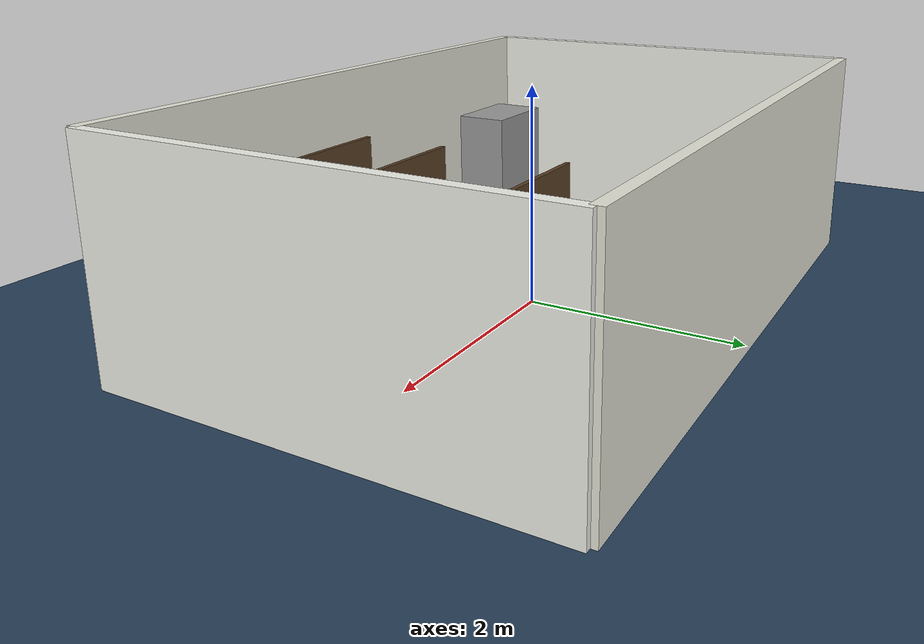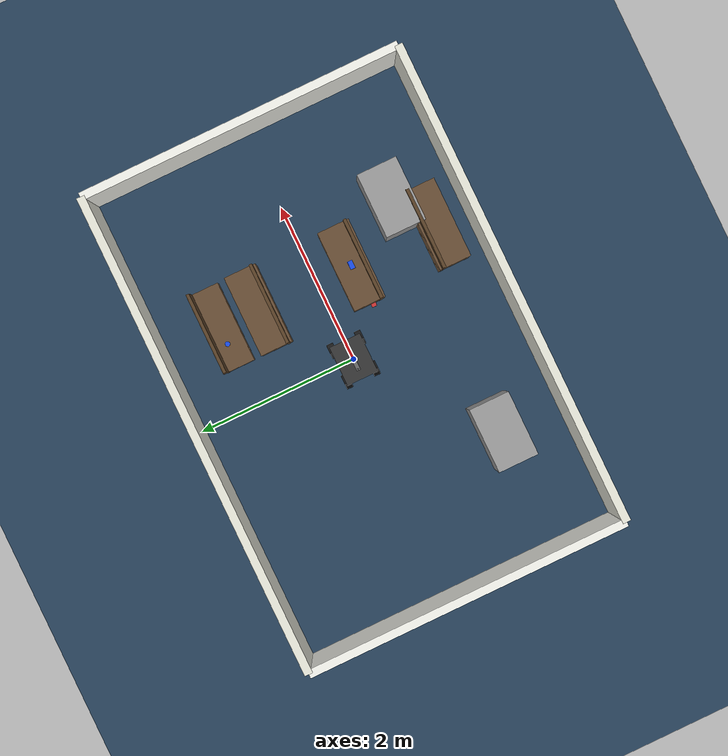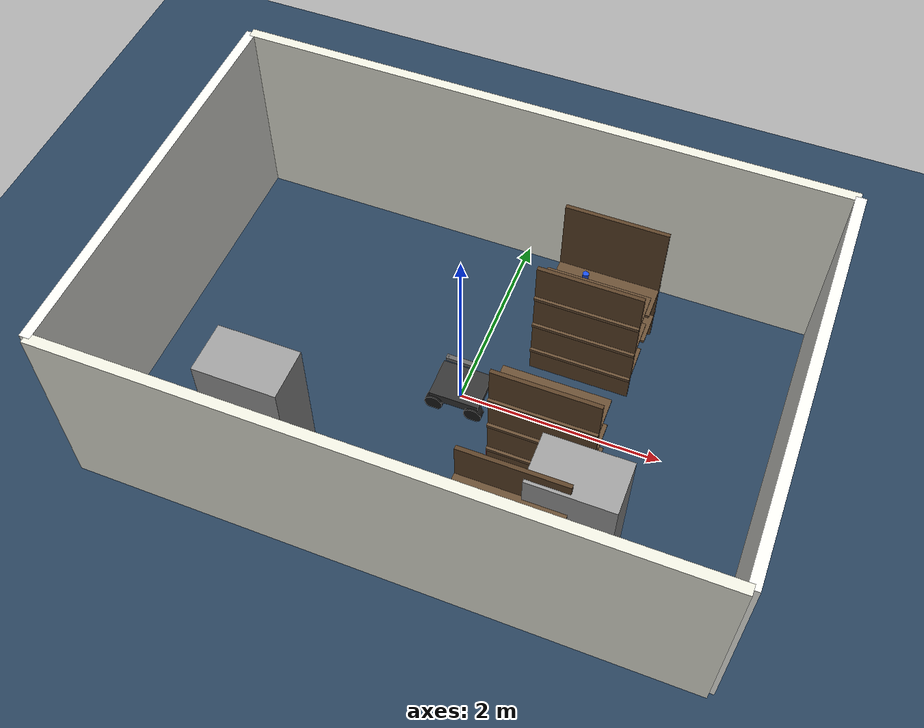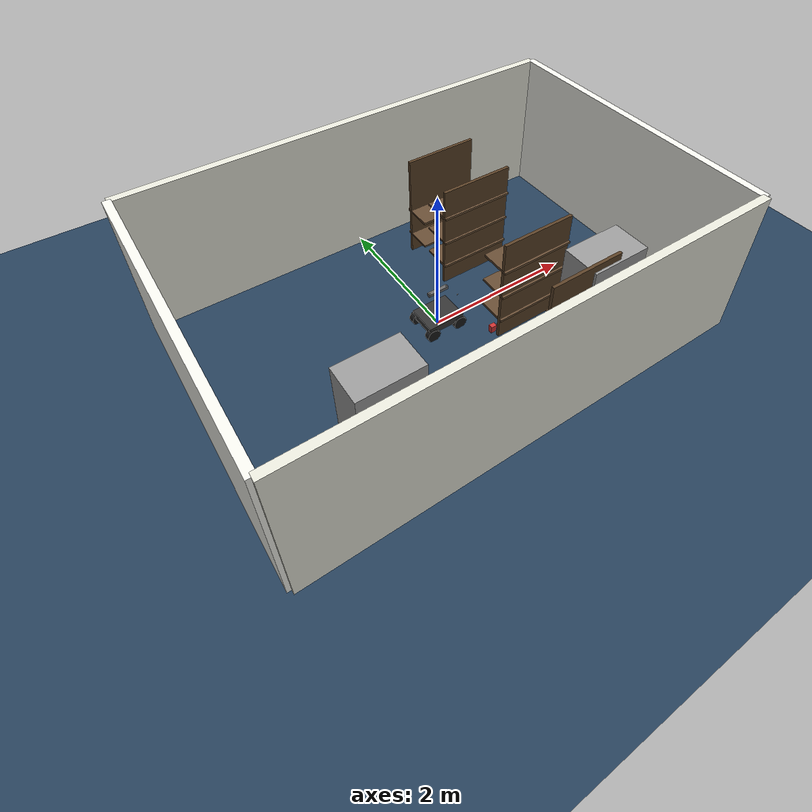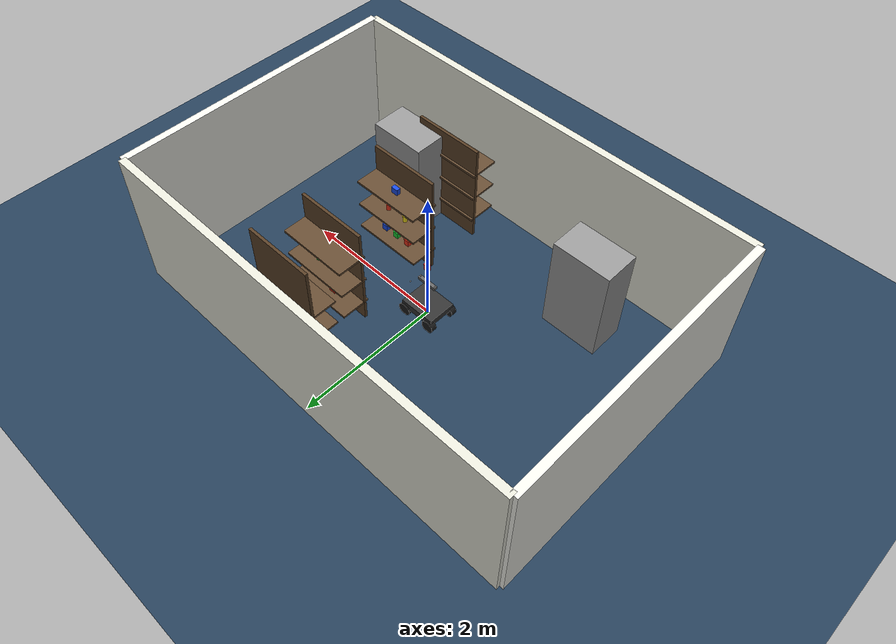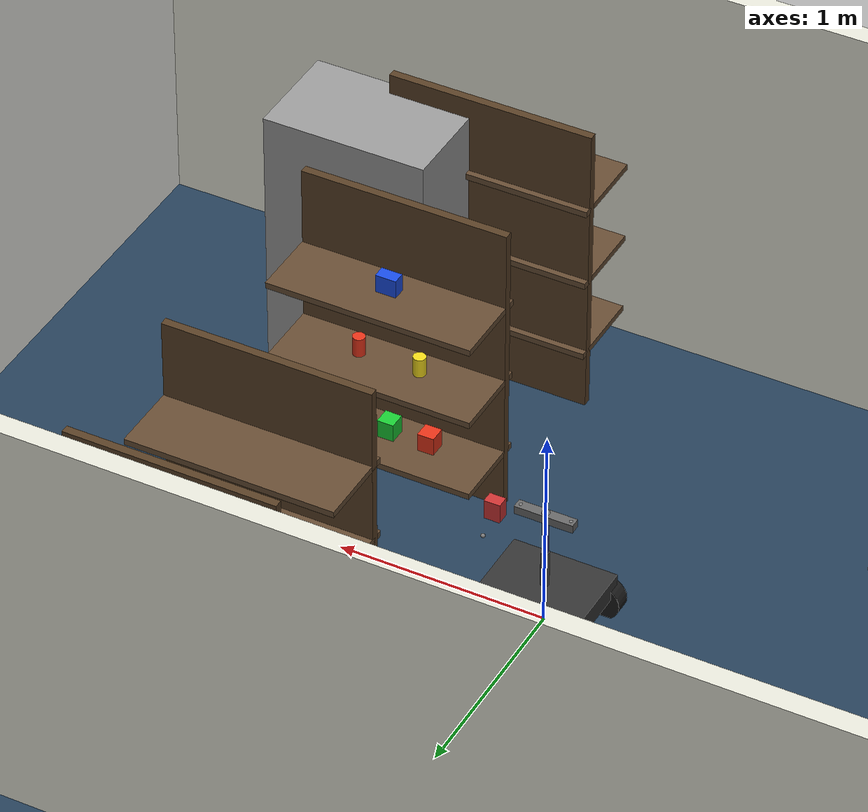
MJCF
<mujoco model="honi_store">
  <include file="honi_scene_v2.1.xml"/>

  <option timestep="0.002" gravity="0 0 -9.81"/>

  <visual>
    <headlight ambient="0.3 0.3 0.3" diffuse="0.6 0.6 0.6"/>
    <rgba haze="0.15 0.25 0.35 1"/>
  </visual>

  <asset>
    <!-- Floor and wall materials -->
    <texture name="floor_tile" type="2d" builtin="checker" width="512" height="512" rgb1="0.9 0.9 0.9" rgb2="0.8 0.8 0.85"/>
    <material name="mat_floor" texture="floor_tile" texrepeat="8 8" reflectance="0.1"/>
    <material name="mat_wall" rgba="0.95 0.95 0.92 1"/>
    <material name="mat_shelf" rgba="0.4 0.3 0.2 1"/>
    <material name="mat_shelf_back" rgba="0.35 0.25 0.15 1"/>
    <material name="mat_item_red" rgba="0.9 0.2 0.1 1"/>
    <material name="mat_item_green" rgba="0.1 0.8 0.2 1"/>
    <material name="mat_item_blue" rgba="0.1 0.3 0.9 1"/>
    <material name="mat_item_yellow" rgba="0.95 0.85 0.1 1"/>
  </asset>

  <worldbody>
    <!-- Store Floor (6m x 4m) -->
    <geom name="store_floor" type="plane" size="3 2 0.01" material="mat_floor"/>

    <!-- Walls -->
    <body name="wall_north" pos="0 2 1">
      <geom type="box" size="3 0.05 1" material="mat_wall"/>
    </body>
    <body name="wall_south" pos="0 -2 1">
      <geom type="box" size="3 0.05 1" material="mat_wall"/>
    </body>
    <body name="wall_east" pos="3 0 1">
      <geom type="box" size="0.05 2 1" material="mat_wall"/>
    </body>
    <body name="wall_west" pos="-3 0 1">
      <geom type="box" size="0.05 2 1" material="mat_wall"/>
    </body>

    <!-- ===== AISLE 1 (y = -1.0) ===== -->
    <!-- Shelf Unit A (left side of aisle 1) -->
    <body name="shelf_A" pos="1.0 -0.6 0">
      <!-- Shelf frame -->
      <geom name="shelf_A_back" type="box" pos="0 0 0.75" size="0.5 0.02 0.75" material="mat_shelf_back"/>
      <!-- Low shelf -->
      <geom name="shelf_A_low" type="box" pos="0 0.15 0.3" size="0.5 0.2 0.015" material="mat_shelf"/>
      <!-- Mid shelf -->
      <geom name="shelf_A_mid" type="box" pos="0 0.15 0.7" size="0.5 0.2 0.015" material="mat_shelf"/>
      <!-- High shelf -->
      <geom name="shelf_A_high" type="box" pos="0 0.15 1.1" size="0.5 0.2 0.015" material="mat_shelf"/>
      <!-- Items on low shelf -->
      <body name="item_A1" pos="-0.2 0.15 0.36">
        <geom type="box" size="0.04 0.04 0.045" material="mat_item_red"/>
      </body>
      <body name="item_A2" pos="0.0 0.15 0.36">
        <geom type="box" size="0.04 0.04 0.045" material="mat_item_green"/>
      </body>
      <body name="item_A3" pos="0.2 0.15 0.36">
        <geom type="box" size="0.04 0.04 0.045" material="mat_item_blue"/>
      </body>
      <!-- Items on mid shelf -->
      <body name="item_A4" pos="-0.15 0.15 0.76">
        <geom type="cylinder" size="0.03 0.05" material="mat_item_yellow"/>
      </body>
      <body name="item_A5" pos="0.15 0.15 0.76">
        <geom type="cylinder" size="0.03 0.05" material="mat_item_red"/>
      </body>
      <!-- Items on high shelf -->
      <body name="item_A6" pos="0.0 0.15 1.16">
        <geom type="box" size="0.05 0.03 0.045" material="mat_item_blue"/>
      </body>
    </body>

    <!-- Shelf Unit B (right side of aisle 1) -->
    <body name="shelf_B" pos="1.0 -1.4 0">
      <geom name="shelf_B_back" type="box" pos="0 0 0.75" size="0.5 0.02 0.75" material="mat_shelf_back"/>
      <geom name="shelf_B_low" type="box" pos="0 -0.15 0.3" size="0.5 0.2 0.015" material="mat_shelf"/>
      <geom name="shelf_B_mid" type="box" pos="0 -0.15 0.7" size="0.5 0.2 0.015" material="mat_shelf"/>
      <geom name="shelf_B_high" type="box" pos="0 -0.15 1.1" size="0.5 0.2 0.015" material="mat_shelf"/>
      <body name="item_B1" pos="-0.2 -0.15 0.36">
        <geom type="box" size="0.04 0.04 0.045" material="mat_item_yellow"/>
      </body>
      <body name="item_B2" pos="0.1 -0.15 0.36">
        <geom type="box" size="0.04 0.04 0.045" material="mat_item_green"/>
      </body>
      <body name="item_B3" pos="0.0 -0.15 0.76">
        <geom type="cylinder" size="0.03 0.05" material="mat_item_blue"/>
      </body>
    </body>

    <!-- ===== AISLE 2 (y = 1.0) ===== -->
    <!-- Shelf Unit C -->
    <body name="shelf_C" pos="1.0 0.6 0">
      <geom name="shelf_C_back" type="box" pos="0 0 0.75" size="0.5 0.02 0.75" material="mat_shelf_back"/>
      <geom name="shelf_C_low" type="box" pos="0 0.15 0.3" size="0.5 0.2 0.015" material="mat_shelf"/>
      <geom name="shelf_C_mid" type="box" pos="0 0.15 0.7" size="0.5 0.2 0.015" material="mat_shelf"/>
      <geom name="shelf_C_high" type="box" pos="0 0.15 1.1" size="0.5 0.2 0.015" material="mat_shelf"/>
      <body name="item_C1" pos="-0.1 0.15 0.36">
        <geom type="box" size="0.05 0.04 0.04" material="mat_item_red"/>
      </body>
      <body name="item_C2" pos="0.15 0.15 0.76">
        <geom type="cylinder" size="0.025 0.06" material="mat_item_green"/>
      </body>
    </body>

    <!-- Shelf Unit D -->
    <body name="shelf_D" pos="1.0 1.4 0">
      <geom name="shelf_D_back" type="box" pos="0 0 0.75" size="0.5 0.02 0.75" material="mat_shelf_back"/>
      <geom name="shelf_D_low" type="box" pos="0 -0.15 0.3" size="0.5 0.2 0.015" material="mat_shelf"/>
      <geom name="shelf_D_mid" type="box" pos="0 -0.15 0.7" size="0.5 0.2 0.015" material="mat_shelf"/>
      <body name="item_D1" pos="0.0 -0.15 0.36">
        <geom type="box" size="0.04 0.04 0.045" material="mat_item_yellow"/>
      </body>
      <body name="item_D2" pos="-0.2 -0.15 0.76">
        <geom type="cylinder" size="0.03 0.05" material="mat_item_blue"/>
      </body>
    </body>

    <!-- Overhead lights -->
    <light name="light_aisle1" pos="1.0 -1.0 2.5" dir="0 0 -1" diffuse="0.8 0.8 0.8" specular="0.3 0.3 0.3"/>
    <light name="light_aisle2" pos="1.0 1.0 2.5" dir="0 0 -1" diffuse="0.8 0.8 0.8" specular="0.3 0.3 0.3"/>
    <light name="light_entrance" pos="-1.0 0.0 2.5" dir="0 0 -1" diffuse="0.7 0.7 0.7"/>

  </worldbody>
</mujoco>

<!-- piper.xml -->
<mujoco model="piper_description">

  <option integrator="implicitfast" cone="elliptic" impratio="10"/>

  <default>
    <default class="piper">
      <joint frictionloss="0.3" armature="0.005"/>
      <position inheritrange="1" forcerange="-100 100"/>
      <default class="finger">
        <joint frictionloss="0" type="slide"/>
        <position forcerange="-10 10"/>
      </default>
      <default class="visual">
        <geom group="2" type="mesh" contype="0" conaffinity="0" density="0"/>
      </default>
      <default class="collision">
        <geom group="3" type="capsule"/>
      </default>
    </default>
  </default>

  <asset>
    <material name="gray_mat" rgba="0.59 0.59 0.59 1"/>
    <material name="light_gray_mat" rgba="0.98 0.98 0.98 1"/>
    <material name="light_medium_gray_mat" rgba="0.85 0.85 0.85 1"/>
    <material name="dark_gray_mat" rgba="0.086 0.086 0.086 1"/>
    <material name="darker_gray_mat" rgba="0.14 0.14 0.14 1"/>
    <material name="white_mat" rgba="1 1 1 1"/>
    <material name="red_mat" rgba="0.82 0.15 0.15 1"/>
    <material name="black_mat" rgba="0 0 0 1"/>
    <material name="light_blue" rgba="0.79 0.82 0.93 1"/>

    <mesh file="link2_0.obj"/>
    <mesh file="link2_1.obj"/>
    <mesh file="link2_2.obj"/>
    <mesh file="link2_3.obj"/>
    <mesh file="link2_4.obj"/>
    <mesh file="link2_5.obj"/>
    <mesh file="link2_6.obj"/>
    <mesh file="link2_7.obj"/>
    <mesh file="link2_8.obj"/>
    <mesh file="link2_9.obj"/>
    <mesh file="link2_10.obj"/>
    <mesh file="link2_11.obj"/>
    <mesh file="link2_12.obj"/>
    <mesh file="link2_13.obj"/>
    <mesh file="link2_14.obj"/>
    <mesh file="link2_15.obj"/>
    <mesh file="link2_16.obj"/>
    <mesh file="link2_17.obj"/>
    <mesh file="link2_18.obj"/>
    <mesh file="link2_19.obj"/>
    <mesh file="link2_20.obj"/>
    <mesh file="link2_21.obj"/>
    <mesh file="link2_22.obj"/>
    <mesh file="link2_23.obj"/>
    <mesh file="link2_24.obj"/>
    <mesh file="link2_25.obj"/>
    <mesh file="link2_26.obj"/>
    <mesh file="link2_27.obj"/>
    <mesh file="link2_28.obj"/>
    <mesh file="link2_29.obj"/>
    <mesh file="link2_30.obj"/>
    <mesh file="link2_31.obj"/>
    <mesh file="link3_0.obj"/>
    <mesh file="link3_1.obj"/>
    <mesh file="link3_2.obj"/>
    <mesh file="link3_3.obj"/>
    <mesh file="link3_4.obj"/>
    <mesh file="link3_5.obj"/>
    <mesh file="link3_7.obj"/>
    <mesh file="link3_8.obj"/>
    <mesh file="link3_9.obj"/>
    <mesh file="link3_10.obj"/>
    <mesh file="link3_11.obj"/>
    <mesh file="link3_12.obj"/>
    <mesh file="link3_13.obj"/>
    <mesh file="link3_14.obj"/>
    <mesh file="link3_15.obj"/>
    <mesh file="link3_16.obj"/>
    <mesh file="link3_17.obj"/>
    <mesh file="link3_18.obj"/>
    <mesh file="link3_19.obj"/>
    <mesh file="link3_20.obj"/>
    <mesh file="link3_21.obj"/>
    <mesh file="link3_22.obj"/>
    <mesh file="link3_23.obj"/>
    <mesh file="link3_24.obj"/>
    <mesh file="link3_25.obj"/>
    <mesh file="link3_26.obj"/>
    <mesh file="link3_27.obj"/>
    <mesh file="link3_28.obj"/>
    <mesh file="link4_2.obj"/>
    <mesh file="link4_3.obj"/>
    <mesh file="link4_4.obj"/>
    <mesh file="link4_5.obj"/>
    <mesh file="link4_6.obj"/>
    <mesh file="link5_2.obj"/>
    <mesh file="link5_3.obj"/>
    <mesh file="link5_4.obj"/>
    <mesh file="link5_5.obj"/>
    <mesh file="link5_6.obj"/>
    <mesh file="link5_7.obj"/>
    <mesh file="link5_8.obj"/>
    <mesh name="base_link" file="base_link.stl"/>
    <mesh name="link1" file="link1.stl"/>
    <mesh name="link2" file="link2.stl"/>
    <mesh name="link2_gray" file="link2_gray.stl"/>
    <mesh name="link3" file="link3.stl"/>
    <mesh name="link4" file="link4.stl"/>
    <mesh name="link5" file="link5.stl"/>
    <mesh file="link6.stl"/>
    <mesh file="link7.stl"/>
    <mesh file="link8.stl"/>
  </asset>

  <worldbody>
    <light name="spotlight" mode="targetbodycom" target="link8" pos="0 0 1"/>
    <body name="base_link" childclass="piper" gravcomp="1">
      <inertial pos="-0.00979275 1.82906e-06 0.04101" quat="0.692988 -0.137524 -0.137826 0.69416" mass="0.162549"
        diaginertia="0.000269445 0.000227478 0.000221437"/>
      <geom class="visual" density="0" mesh="base_link" material="gray_mat"/>
      <geom class="collision" mesh="base_link"/>
      <body name="link1" pos="0 0 0.123" quat="0.707105 0 0 -0.707108" gravcomp="1">
        <inertial pos="0.00131676 0.000310289 -0.00922875" quat="0.557105 0.432155 0.377373 0.600388" mass="0.097868"
          diaginertia="9.25942e-05 8.3083e-05 7.69469e-05"/>
        <joint name="joint1" axis="0 0 1" range="-2.618 2.618"/>
        <geom class="visual" density="0" mesh="link1" material="gray_mat"/>
        <geom class="collision" mesh="link1"/>
        <body name="link2" quat="0.499998 0.5 -0.500002 -0.5" gravcomp="1">
          <inertial pos="0.148794 -0.00242027 0.00175155" quat="-0.0249063 0.70684 0.00803509 0.706889" mass="0.290889"
            diaginertia="0.00177549 0.00173142 0.00014552"/>
          <joint name="joint2" axis="0 0 1" range="0 3.14"/>
          <geom mesh="link2_0" material="gray_mat" class="visual"/>
          <geom mesh="link2_1" material="darker_gray_mat" class="visual"/>
          <geom mesh="link2_2" material="darker_gray_mat" class="visual"/>
          <geom mesh="link2_3" material="dark_gray_mat" class="visual"/>
          <geom mesh="link2_4" material="dark_gray_mat" class="visual"/>
          <geom mesh="link2_5" material="red_mat" class="visual"/>
          <geom mesh="link2_6" material="dark_gray_mat" class="visual"/>
          <geom mesh="link2_7" material="gray_mat" class="visual"/>
          <geom mesh="link2_8" material="red_mat" class="visual"/>
          <geom mesh="link2_9" material="red_mat" class="visual"/>
          <geom mesh="link2_10" material="gray_mat" class="visual"/>
          <geom mesh="link2_11" material="red_mat" class="visual"/>
          <geom mesh="link2_12" material="red_mat" class="visual"/>
          <geom mesh="link2_13" material="red_mat" class="visual"/>
          <geom mesh="link2_14" material="red_mat" class="visual"/>
          <geom mesh="link2_15" material="red_mat" class="visual"/>
          <geom mesh="link2_16" material="red_mat" class="visual"/>
          <geom mesh="link2_17" material="red_mat" class="visual"/>
          <geom mesh="link2_18" material="red_mat" class="visual"/>
          <geom mesh="link2_19" material="red_mat" class="visual"/>
          <geom mesh="link2_20" material="red_mat" class="visual"/>
          <geom mesh="link2_21" material="gray_mat" class="visual"/>
          <geom mesh="link2_22" material="red_mat" class="visual"/>
          <geom mesh="link2_23" material="red_mat" class="visual"/>
          <geom mesh="link2_24" material="red_mat" class="visual"/>
          <geom mesh="link2_25" material="dark_gray_mat" class="visual"/>
          <geom mesh="link2_26" material="red_mat" class="visual"/>
          <geom mesh="link2_27" material="darker_gray_mat" class="visual"/>
          <geom mesh="link2_28" material="darker_gray_mat" class="visual"/>
          <geom mesh="link2_29" material="darker_gray_mat" class="visual"/>
          <geom mesh="link2_30" material="darker_gray_mat" class="visual"/>
          <geom mesh="link2_31" material="light_medium_gray_mat" class="visual"/>
          <geom mesh="link2" class="collision"/>
          <body name="link3" pos="0.28358 0.028726 0" quat="0.998726 0 0 0.0504536" gravcomp="1">
            <inertial pos="-0.0996835 0.0349477 0.000508026" quat="0.0777021 0.702287 -0.0990541 0.700674"
              mass="0.290848" diaginertia="0.000241946 0.000222224 0.000100384"/>
            <joint name="joint3" pos="0 0 0" axis="0 0 1" range="-2.697 0"/>
            <geom mesh="link3_0" material="darker_gray_mat" class="visual"/>
            <geom mesh="link3_1" material="red_mat" class="visual"/>
            <geom mesh="link3_2" material="gray_mat" class="visual"/>
            <geom mesh="link3_3" material="gray_mat" class="visual"/>
            <geom mesh="link3_4" material="gray_mat" class="visual"/>
            <geom mesh="link3_5" material="gray_mat" class="visual"/>
            <geom mesh="link3_7" material="darker_gray_mat" class="visual"/>
            <geom mesh="link3_8" material="white_mat" class="visual"/>
            <geom mesh="link3_9" material="red_mat" class="visual"/>
            <geom mesh="link3_10" material="white_mat" class="visual"/>
            <geom mesh="link3_11" material="white_mat" class="visual"/>
            <geom mesh="link3_12" material="white_mat" class="visual"/>
            <geom mesh="link3_13" material="white_mat" class="visual"/>
            <geom mesh="link3_14" material="gray_mat" class="visual"/>
            <geom mesh="link3_15" material="gray_mat" class="visual"/>
            <geom mesh="link3_16" material="gray_mat" class="visual"/>
            <geom mesh="link3_17" material="gray_mat" class="visual"/>
            <geom mesh="link3_18" material="gray_mat" class="visual"/>
            <geom mesh="link3_19" material="gray_mat" class="visual"/>
            <geom mesh="link3_20" material="gray_mat" class="visual"/>
            <geom mesh="link3_21" material="gray_mat" class="visual"/>
            <geom mesh="link3_22" material="gray_mat" class="visual"/>
            <geom mesh="link3_23" material="gray_mat" class="visual"/>
            <geom mesh="link3_24" material="gray_mat" class="visual"/>
            <geom mesh="link3_25" material="gray_mat" class="visual"/>
            <geom mesh="link3_26" material="gray_mat" class="visual"/>
            <geom mesh="link3_27" material="gray_mat" class="visual"/>
            <geom mesh="link3_28" material="gray_mat" class="visual"/>
            <geom mesh="link3" class="collision"/>
            <body name="link4" pos="-0.24221 0.068514 0" quat="0.544767 -0.544769 -0.450809 0.450808" gravcomp="1">
              <inertial pos="0.000276465 -0.00102804 -0.00472831" quat="0.492305 0.505285 0.503294 0.499017"
                mass="0.127087" diaginertia="4.87057e-05 4.10595e-05 3.82001e-05"/>
              <joint name="joint4" axis="0 0 1" range="-1.832 1.832"/>
              <geom mesh="link4_2" material="gray_mat" class="visual"/>
              <geom mesh="link4_3" material="darker_gray_mat" class="visual"/>
              <geom mesh="link4_4" material="gray_mat" class="visual"/>
              <geom mesh="link4_5" material="gray_mat" class="visual"/>
              <geom mesh="link4_6" material="gray_mat" class="visual"/>
              <geom mesh="link4" class="collision"/>
              <body name="link5" quat="0.707105 0.707108 0 0" gravcomp="1">
                <inertial pos="8.82262e-05 0.0566829 -0.0019612" quat="0.507447 0.490986 0.506887 0.494466"
                  mass="0.144711" diaginertia="0.001 0.001 0.001"/>
                <joint name="joint5" axis="0 0 1" range="-1.22 1.22"/>
                <geom mesh="link5_2" material="black_mat" class="visual"/>
                <geom mesh="link5_3" material="black_mat" class="visual"/>
                <geom mesh="link5_4" material="darker_gray_mat" class="visual"/>
                <geom mesh="link5_5" material="gray_mat" class="visual"/>
                <geom mesh="link5_6" material="light_gray_mat" class="visual"/>
                <geom mesh="link5_7" material="gray_mat" class="visual"/>
                <geom mesh="link5_8" material="gray_mat" class="visual"/>
                <geom mesh="link5" class="collision"/>
                <body name="link6" pos="0 0.091 0.0014165" quat="0 0 -0.707105 -0.707108" gravcomp="1">
                  <inertial pos="0.0010312 0.0121761 0.0315481" quat="0.0230402 0.707091 0.0373344 0.70576" mass="1.2"
                    diaginertia="0.001 0.001 0.001"/>
                  <joint name="joint6" axis="0 0 1" range="-3.14 3.14"/>
                  <geom quat="0.707105 0 0 0.707108" mesh="link6" material="gray_mat" class="visual"/>
                  <geom quat="0.707105 0 0 0.707108" mesh="link6" class="collision"/>
                  <body name="link7" pos="0 0 0.13503" quat="1.89468e-08 1.89469e-08 0.707108 0.707105" gravcomp="1">
                    <inertial pos="-0.000277778 -0.0467673 -0.00921029" quat="0.46134 0.536174 -0.553273 0.439968"
                      mass="0.0264823" diaginertia="0.001 0.001 0.001"/>
                    <joint name="joint7" axis="0 0 -1" class="finger" range="0 0.035"/>
                    <geom mesh="link7" material="gray_mat" class="visual"/>
                    <geom type="box" size=".012 .015 .0025" pos="0 -0.015 -0.0025" rgba="1 0 0 .2" class="collision"/>
                    <geom type="box" size=".015 .015 .0025" pos="0 -0.045 -0.0025" rgba="0 0 1 .2" class="collision"/>
                  </body>
                  <body name="link8" pos="0 0 0.13503" quat="1.89468e-08 -1.89469e-08 -0.707108 0.707105" gravcomp="1">
                    <inertial pos="0.000277817 0.0467674 -0.0092103" quat="0.553273 0.439968 -0.46134 0.536174"
                      mass="0.0264822" diaginertia="0.001 0.001 0.001"/>
                    <joint name="joint8" axis="0 0 1" class="finger" range="-0.035 0"/>
                    <geom mesh="link8" material="gray_mat" class="visual"/>
                    <geom type="box" size=".012 .015 .0025" pos="0 0.015 -0.0025" rgba="1 0 0 .2" class="collision"/>
                    <geom type="box" size=".015 .015 .0025" pos="0 0.045 -0.0025" rgba="0 0 1 .2" class="collision"/>
                  </body>
                </body>
              </body>
            </body>
          </body>
        </body>
      </body>
    </body>
  </worldbody>

  <contact>
    <exclude body1="base_link" body2="link1"/>
  </contact>

  <equality>
    <joint joint1="joint8" joint2="joint7" polycoef="0 -1 0 0 0"/>
  </equality>

  <actuator>
    <position name="joint1" joint="joint1" class="piper" kp="80" kv="5"/>
    <position name="joint2" joint="joint2" class="piper" kp="80" kv="5"/>
    <position name="joint3" joint="joint3" class="piper" kp="80" kv="5"/>
    <position name="joint4" joint="joint4" class="piper" kp="40" kv="5"/>
    <position name="joint5" joint="joint5" class="piper" kp="10" kv="1.5"/>
    <position name="joint6" joint="joint6" class="piper" kp="10" kv="1.5"/>
    <position name="gripper" joint="joint7" class="finger" kp="40" kv="5"/>
  </actuator>

  <keyframe>
    <key name="home" qpos="0 1.57 -1.3485 0 0 0 0 0 " ctrl="0 1.57 -1.3485 0 0 0 0"/>
  </keyframe>
</mujoco>

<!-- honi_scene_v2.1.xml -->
<mujoco model="honi_robot_v2.1">
        <compiler angle="radian" meshdir="../agilex_piper/assets"/>
    <option integrator="implicitfast" cone="elliptic" impratio="10"/>
    <option timestep="0.002"/>

    <statistic center="0 0 0.5" extent="2.5"/>

    <visual>
        <headlight diffuse="0.6 0.6 0.6" ambient="0.3 0.3 0.3" specular="0 0 0"/>
        <rgba haze="0.15 0.25 0.35 1"/>
        <global azimuth="120" elevation="-20"/>
    </visual>

    <asset>
        <texture type="skybox" builtin="gradient" rgb1="0.3 0.5 0.7" rgb2="0 0 0" width="512" height="3072"/>
        <texture type="2d" name="groundplane" builtin="checker" mark="edge" rgb1="0.2 0.3 0.4" rgb2="0.1 0.2 0.3" markrgb="0.8 0.8 0.8" width="300" height="300"/>
        <material name="groundplane" texture="groundplane" texuniform="true" texrepeat="5 5" reflectance="0.2"/>
        <material name="shelf_mat" rgba="0.6 0.6 0.6 1"/>
        <material name="wall_mat" rgba="0.9 0.9 0.85 1"/>
        <material name="item_red" rgba="0.8 0.2 0.2 1"/>
        <material name="item_green" rgba="0.2 0.7 0.2 1"/>
        <material name="item_blue" rgba="0.2 0.2 0.8 1"/>
    </asset>

    <worldbody>
        <!-- Ground plane -->
        <geom name="floor" size="0 0 0.05" type="plane" material="groundplane" friction="1.0 0.005 0.0001"/>
        <light pos="0 0 2.5" dir="0 0 -1" directional="true"/>
        <light pos="2 2 2" dir="-1 -1 -1"/>

        <!-- Store walls (aisle section) -->
        <geom name="wall_back" type="box" pos="0 -2 1" size="3 0.05 1" material="wall_mat" contype="1" conaffinity="1"/>
        <geom name="wall_front" type="box" pos="0 2 1" size="3 0.05 1" material="wall_mat" contype="1" conaffinity="1"/>

        <!-- Shelf unit A (right side) -->
        <body name="shelf_a" pos="1.5 -1.2 0">
            <geom name="shelf_a_frame" type="box" size="0.4 0.25 0.7" pos="0 0 0.7" material="shelf_mat"/>
            <geom name="shelf_a_s1" type="box" size="0.38 0.23 0.005" pos="0 0 0.35" material="shelf_mat"/>
            <geom name="shelf_a_s2" type="box" size="0.38 0.23 0.005" pos="0 0 0.7" material="shelf_mat"/>
            <geom name="shelf_a_s3" type="box" size="0.38 0.23 0.005" pos="0 0 1.05" material="shelf_mat"/>
        </body>

        <!-- Items on shelf A -->
        <body name="item_a1" pos="1.35 -1.2 0.38">
            <freejoint name="item_a1_free"/>
            <geom name="box_a1" type="box" size="0.04 0.04 0.03" material="item_red" mass="0.3"/>
        </body>
        <body name="item_a2" pos="1.6 -1.2 0.38">
            <freejoint name="item_a2_free"/>
            <geom name="box_a2" type="box" size="0.03 0.05 0.04" material="item_green" mass="0.2"/>
        </body>
        <body name="item_a3" pos="1.5 -1.2 0.73">
            <freejoint name="item_a3_free"/>
            <geom name="can_a3" type="cylinder" size="0.025 0.05" material="item_blue" mass="0.35"/>
        </body>

        <!-- Shelf unit B (left side) -->
        <body name="shelf_b" pos="-1.5 -1.2 0">
            <geom name="shelf_b_frame" type="box" size="0.4 0.25 0.7" pos="0 0 0.7" material="shelf_mat"/>
            <geom name="shelf_b_s1" type="box" size="0.38 0.23 0.005" pos="0 0 0.35" material="shelf_mat"/>
            <geom name="shelf_b_s2" type="box" size="0.38 0.23 0.005" pos="0 0 0.7" material="shelf_mat"/>
        </body>

        <!-- Fallen item on floor -->
        <body name="fallen_item" pos="0.5 -0.5 0.05">
            <freejoint name="fallen_free"/>
            <geom name="fallen_box" type="box" size="0.04 0.03 0.05" material="item_red" mass="0.25"/>
        </body>

        <!-- Honi Robot v2.1: Mecanum Base + Telescoping Spine -->
        <body name="ranger_base" pos="0 0 0.15">
            <freejoint name="base_free"/>
            <inertial pos="0 0 0" mass="25" diaginertia="0.5 0.5 0.3"/>
            <site name="base_imu" pos="0 0 0" size="0.01"/>
            <geom name="chassis" type="box" size="0.25 0.2 0.05" rgba="0.2 0.2 0.2 1" mass="20" friction="0.8 0.005 0.0001"/>

            <!-- Front-right mecanum wheel -->
            <body name="fr_wheel_steer" pos="0.2 -0.18 -0.08">
                <joint name="fr_steering" type="hinge" axis="0 0 1"/>
                <inertial pos="0 0 0" mass="0.1" diaginertia="0.001 0.001 0.001"/>
                <body name="fr_wheel_roll">
                    <joint name="fr_drive" type="hinge" axis="0 1 0"/>
                    <inertial pos="0 0 0" mass="0.1" diaginertia="0.001 0.001 0.001"/>
                    <geom type="cylinder" size="0.09 0.04" euler="1.5708 0 0" rgba="0.1 0.1 0.1 1" mass="8" friction="1.5 0.005 0.0001"/>
                </body>
            </body>

            <!-- Front-left mecanum wheel -->
            <body name="fl_wheel_steer" pos="0.2 0.18 -0.08">
                <joint name="fl_steering" type="hinge" axis="0 0 1"/>
                <inertial pos="0 0 0" mass="0.1" diaginertia="0.001 0.001 0.001"/>
                <body name="fl_wheel_roll">
                    <joint name="fl_drive" type="hinge" axis="0 1 0"/>
                    <inertial pos="0 0 0" mass="0.1" diaginertia="0.001 0.001 0.001"/>
                    <geom type="cylinder" size="0.09 0.04" euler="1.5708 0 0" rgba="0.1 0.1 0.1 1" mass="8" friction="1.5 0.005 0.0001"/>
                </body>
            </body>

            <!-- Rear-left mecanum wheel -->
            <body name="rl_wheel_steer" pos="-0.2 0.18 -0.08">
                <joint name="rl_steering" type="hinge" axis="0 0 1"/>
                <inertial pos="0 0 0" mass="0.1" diaginertia="0.001 0.001 0.001"/>
                <body name="rl_wheel_roll">
                    <joint name="rl_drive" type="hinge" axis="0 1 0"/>
                    <inertial pos="0 0 0" mass="0.1" diaginertia="0.001 0.001 0.001"/>
                    <geom type="cylinder" size="0.09 0.04" euler="1.5708 0 0" rgba="0.1 0.1 0.1 1" mass="8" friction="1.5 0.005 0.0001"/>
                </body>
            </body>

            <!-- Rear-right mecanum wheel -->
            <body name="rr_wheel_steer" pos="-0.2 -0.18 -0.08">
                <joint name="rr_steering" type="hinge" axis="0 0 1"/>
                <inertial pos="0 0 0" mass="0.1" diaginertia="0.001 0.001 0.001"/>
                <body name="rr_wheel_roll">
                    <joint name="rr_drive" type="hinge" axis="0 1 0"/>
                    <inertial pos="0 0 0" mass="0.1" diaginertia="0.001 0.001 0.001"/>
                    <geom type="cylinder" size="0.09 0.04" euler="1.5708 0 0" rgba="0.1 0.1 0.1 1" mass="8" friction="1.5 0.005 0.0001"/>
                </body>
            </body>

            <!-- ======= TELESCOPING SPINE ASSEMBLY (v2.1) ======= -->
            <!-- Outer Spine Tube: fixed to chassis center -->
            <!-- CAD: 6061-T6 Al, OD=40mm, ID=34mm, L=300mm, m=0.283kg -->
            <body name="outer_spine" pos="0 0 0.08">
                <geom name="outer_spine_tube" type="cylinder" size="0.02 0.15" rgba="0.3 0.3 0.3 1" mass="0.283"/>
                <inertial pos="0 0 0" mass="0.283" diaginertia="0.00217 0.00217 0.0000975"/>

                <!-- Inner Spine Tube: slides inside outer tube via prismatic joint -->
                <!-- CAD: 6061-T6 Al, OD=30mm, ID=24mm, L=400mm, m=0.275kg -->
                <body name="inner_spine" pos="0 0 0.15">
                    <joint name="spine_extend" type="slide" axis="0 0 1" range="0 0.395" damping="50" stiffness="200"/>
                    <geom name="inner_spine_tube" type="cylinder" size="0.015 0.2" rgba="0.2 0.2 0.5 1" mass="0.275"/>
                    <inertial pos="0 0 0" mass="0.275" diaginertia="0.00369 0.00369 0.0000507"/>

                    <!-- Crossbar Shoulder Mount: T-bar for dual arm mounting -->
                    <!-- CAD: 6061-T6 Al, ~280x50x40mm, m~0.8kg -->
                    <body name="crossbar_mount" pos="0 0 0.2">
                        <geom name="crossbar" type="box" size="0.14 0.025 0.02" rgba="0.4 0.4 0.4 1" mass="0.8"/>
                        <inertial pos="0 0 0" mass="0.8" diaginertia="0.000273 0.00533 0.00539"/>

                        <!-- ======= PiPER ARM (nested under crossbar_mount) ======= -->
                        <!-- FIX: arm now properly parented to crossbar instead of worldbody+weld -->
                        <include file="../agilex_piper/piper.xml"/>

                        <!-- PiPER arm attachment sites (matched to CAD frames) -->
                        <site name="arm_base" pos="0 0 0.015" size="0.01"/>
                        <site name="piper_attachment" pos="0 0 0.015" size="0.02"/>
                        <!-- Left arm mount -->
                        <site name="left_arm_mount" pos="-0.12 0 0.015" size="0.01"/>
                        <!-- Right arm mount -->
                        <site name="right_arm_mount" pos="0.12 0 0.015" size="0.01"/>
                    </body>
                </body>
            </body>

        </body> <!-- end ranger_base -->

        <!-- Head camera site -->
        <site name="head_camera" pos="0.3 0 0.35" size="0.01"/>
    </worldbody>

    <!-- Sensors -->
    <sensor>
        <!-- Base IMU -->
        <accelerometer name="base_accel" site="base_imu"/>
        <gyro name="base_gyro" site="base_imu"/>
        <magnetometer name="base_mag" site="base_imu"/>
        <!-- Base velocity -->
        <velocimeter name="base_vel" site="base_imu"/>
        <!-- Wheel steering positions -->
        <jointpos name="fr_steer_pos" joint="fr_steering"/>
        <jointpos name="fl_steer_pos" joint="fl_steering"/>
        <jointpos name="rl_steer_pos" joint="rl_steering"/>
        <jointpos name="rr_steer_pos" joint="rr_steering"/>
        <!-- Wheel drive velocities -->
        <jointvel name="fr_drive_vel" joint="fr_drive"/>
        <jointvel name="fl_drive_vel" joint="fl_drive"/>
        <jointvel name="rl_drive_vel" joint="rl_drive"/>
        <jointvel name="rr_drive_vel" joint="rr_drive"/>
        <!-- Spine telescope position (v2.1) -->
        <jointpos name="spine_extend_pos" joint="spine_extend"/>
        <!-- Arm joint sensors -->
        <jointpos name="arm_j1_pos" joint="joint1"/>
        <jointpos name="arm_j2_pos" joint="joint2"/>
        <jointpos name="arm_j3_pos" joint="joint3"/>
        <jointpos name="arm_j4_pos" joint="joint4"/>
        <jointpos name="arm_j5_pos" joint="joint5"/>
        <jointpos name="arm_j6_pos" joint="joint6"/>
        <jointpos name="gripper_pos" joint="joint7"/>
        <!-- Gripper force -->
        <touch name="gripper_touch" site="piper_attachment"/>
        <!-- Camera pose -->
        <framepos name="camera_pos" objtype="site" objname="head_camera"/>
        <framequat name="camera_quat" objtype="site" objname="head_camera"/>
    </sensor>

    <!-- Actuators for base wheels -->
    <actuator>
        <velocity name="fr_drive_act" joint="fr_drive" kv="50" ctrlrange="-10 10"/>
        <velocity name="fl_drive_act" joint="fl_drive" kv="50" ctrlrange="-10 10"/>
        <velocity name="rl_drive_act" joint="rl_drive" kv="50" ctrlrange="-10 10"/>
        <velocity name="rr_drive_act" joint="rr_drive" kv="50" ctrlrange="-10 10"/>
        <position name="fr_steer_act" joint="fr_steering" kp="100" ctrlrange="-2.1 2.1"/>
        <position name="fl_steer_act" joint="fl_steering" kp="100" ctrlrange="-2.1 2.1"/>
        <position name="rl_steer_act" joint="rl_steering" kp="100" ctrlrange="-2.1 2.1"/>
        <position name="rr_steer_act" joint="rr_steering" kp="100" ctrlrange="-2.1 2.1"/>
        <!-- Spine telescope actuator (v2.1) - PD position control -->
        <position name="spine_extend_act" joint="spine_extend" kp="500" kv="100" ctrlrange="0 0.395"/>
    </actuator>

    <!-- Home keyframe -->
    <keyframe>
        <!-- qpos order: base_free(7), 8 wheel joints, spine_extend(1), arm joint1-6 + joint7-8(gripper), 4 item freejoints(28) = 52 total -->
        <!-- spine_extend=0 means fully retracted -->
        <key name="honi_home" qpos="0 0 0 0 0 0 0 0 0 0 0 0 0 0 0 0 0 0 1.35 -1.2 0.38 1 0 0 0 1.6 -1.2 0.38 1 0 0 0 1.5 -1.2 0.73 1 0 0 0 1.5 -1.2 0.73 1 0 0 0 0.5 -0.5 0.05 1 0 0 0"/>
        <!-- Spine extended to 0.2m for mid-height reach -->
        <key name="spine_mid" qpos="0 0 0 0 0 0 0 0 0 0 0 0 0 0 0 0 0.2 0 0 1.35 -1.2 0.38 1 0 0 0 1.6 -1.2 0.38 1 0 0 0 1.5 -1.2 0.73 1 0 0 0 1.5 -1.2 0.73 1 0 0 0 0.5 -0.5 0.05 1 0 0 0"/>
        <!-- Spine fully extended to 0.395m for high shelf reach -->
        <key name="spine_high" qpos="0 0 0 0 0 0 0 0 0 0 0 0 0 0 0 0 0.395 0 0 1.35 -1.2 0.38 1 0 0 0 1.6 -1.2 0.38 1 0 0 0 1.5 -1.2 0.73 1 0 0 0 1.5 -1.2 0.73 1 0 0 0 0.5 -0.5 0.05 1 0 0 0"/>
    </keyframe>

    <!-- Contact exclusions -->
    <contact>
        <exclude body1="base_link" body2="crossbar_mount"/>
    </contact>

</mujoco>
